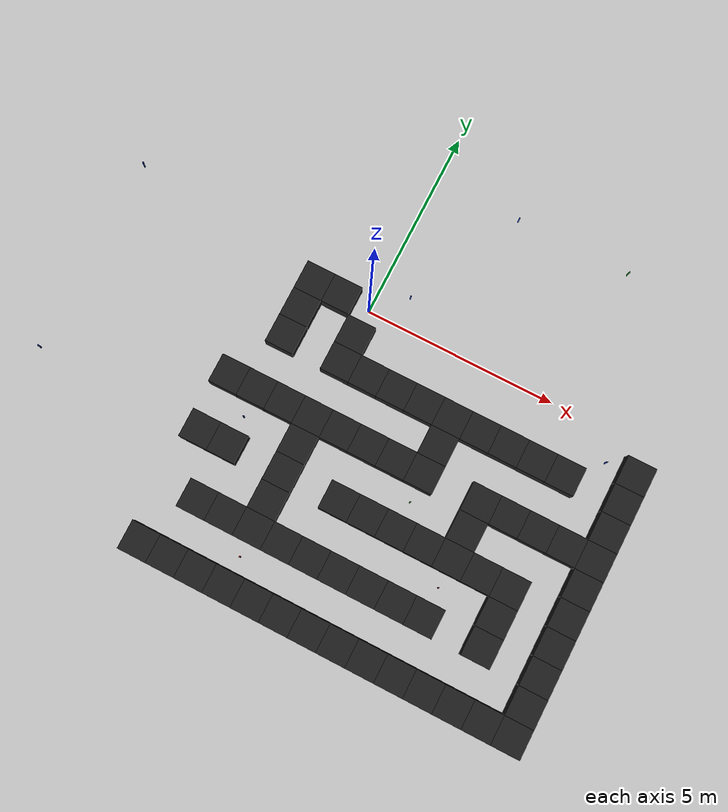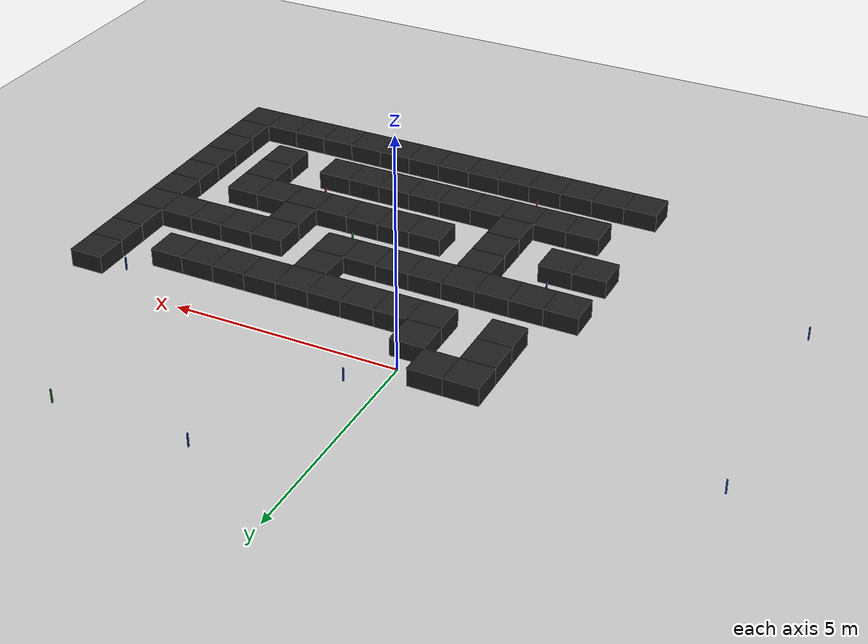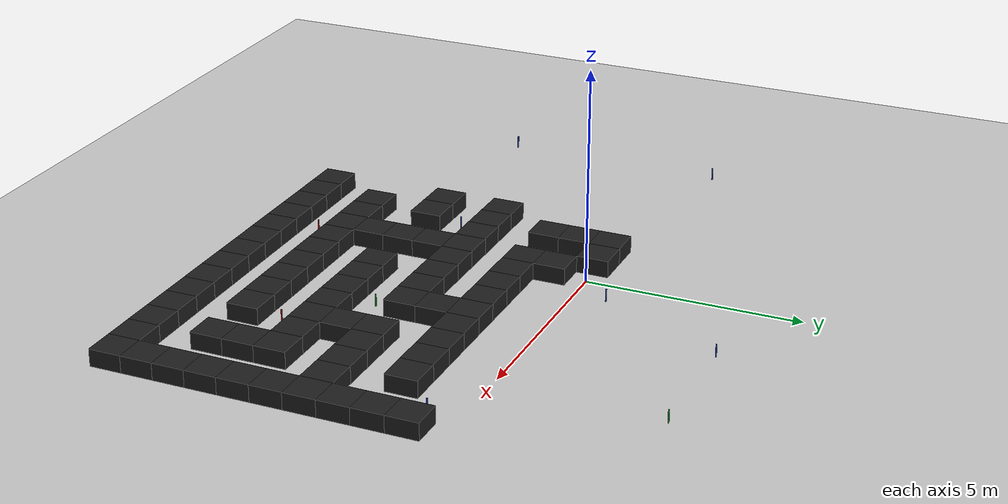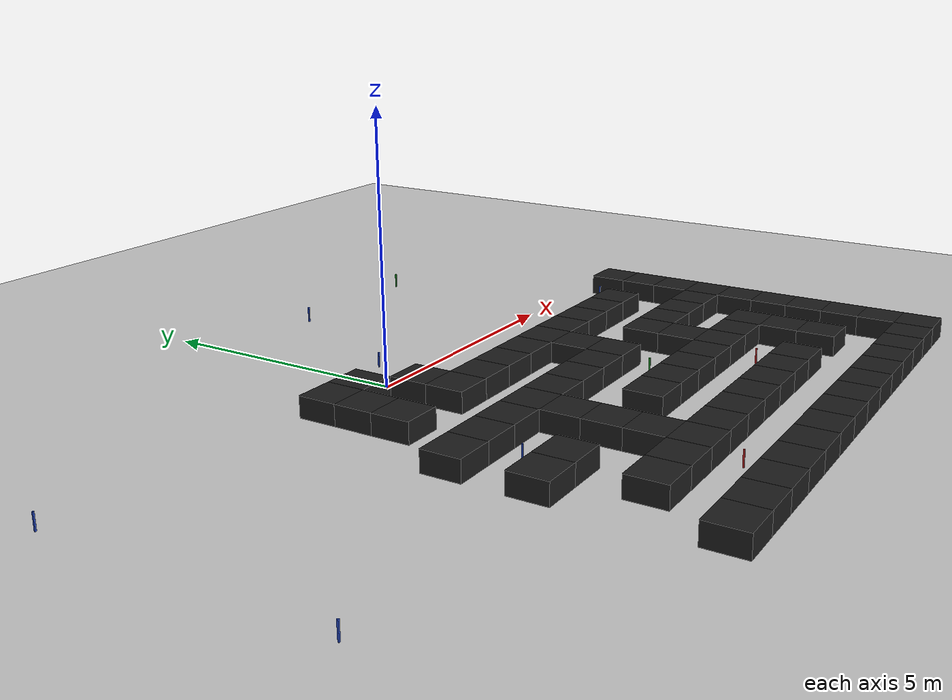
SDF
<sdf version="1.6">
 <world name="maze_gems">
  <include><uri>model://models/sun</uri></include>
  <include><uri>model://models/ground_plane</uri></include>
  <model name="walls">
   <static>true</static>
   <link name="wall_12">
    <pose>7.5 -0.75 0.2 0 0 0</pose>
    <visual name="wall_12_visual">
     <geometry><box><size>0.75 0.75 0.4</size></box></geometry>
     <material>
      <script><uri>file://media/materials/scripts/gazebo.material</uri><name>Gazebo/Black</name></script>
     </material>
    </visual>
    <collision name="wall_12_collision"><geometry><box><size>0.75 0.75 0.4</size></box></geometry></collision>
   </link>
   <link name="wall_13">
    <pose>7.5 -1.5 0.2 0 0 0</pose>
    <visual name="wall_13_visual">
     <geometry><box><size>0.75 0.75 0.4</size></box></geometry>
     <material>
      <script><uri>file://media/materials/scripts/gazebo.material</uri><name>Gazebo/Black</name></script>
     </material>
    </visual>
    <collision name="wall_13_collision"><geometry><box><size>0.75 0.75 0.4</size></box></geometry></collision>
   </link>
   <link name="wall_14">
    <pose>7.5 -2.25 0.2 0 0 0</pose>
    <visual name="wall_14_visual">
     <geometry><box><size>0.75 0.75 0.4</size></box></geometry>
     <material>
      <script><uri>file://media/materials/scripts/gazebo.material</uri><name>Gazebo/Black</name></script>
     </material>
    </visual>
    <collision name="wall_14_collision"><geometry><box><size>0.75 0.75 0.4</size></box></geometry></collision>
   </link>
   <link name="wall_15">
    <pose>7.5 -3.0 0.2 0 0 0</pose>
    <visual name="wall_15_visual">
     <geometry><box><size>0.75 0.75 0.4</size></box></geometry>
     <material>
      <script><uri>file://media/materials/scripts/gazebo.material</uri><name>Gazebo/Black</name></script>
     </material>
    </visual>
    <collision name="wall_15_collision"><geometry><box><size>0.75 0.75 0.4</size></box></geometry></collision>
   </link>
   <link name="wall_16">
    <pose>7.5 -3.75 0.2 0 0 0</pose>
    <visual name="wall_16_visual">
     <geometry><box><size>0.75 0.75 0.4</size></box></geometry>
     <material>
      <script><uri>file://media/materials/scripts/gazebo.material</uri><name>Gazebo/Black</name></script>
     </material>
    </visual>
    <collision name="wall_16_collision"><geometry><box><size>0.75 0.75 0.4</size></box></geometry></collision>
   </link>
   <link name="wall_17">
    <pose>7.5 -4.5 0.2 0 0 0</pose>
    <visual name="wall_17_visual">
     <geometry><box><size>0.75 0.75 0.4</size></box></geometry>
     <material>
      <script><uri>file://media/materials/scripts/gazebo.material</uri><name>Gazebo/Black</name></script>
     </material>
    </visual>
    <collision name="wall_17_collision"><geometry><box><size>0.75 0.75 0.4</size></box></geometry></collision>
   </link>
   <link name="wall_18">
    <pose>7.5 -5.25 0.2 0 0 0</pose>
    <visual name="wall_18_visual">
     <geometry><box><size>0.75 0.75 0.4</size></box></geometry>
     <material>
      <script><uri>file://media/materials/scripts/gazebo.material</uri><name>Gazebo/Black</name></script>
     </material>
    </visual>
    <collision name="wall_18_collision"><geometry><box><size>0.75 0.75 0.4</size></box></geometry></collision>
   </link>
   <link name="wall_19">
    <pose>7.5 -6.0 0.2 0 0 0</pose>
    <visual name="wall_19_visual">
     <geometry><box><size>0.75 0.75 0.4</size></box></geometry>
     <material>
      <script><uri>file://media/materials/scripts/gazebo.material</uri><name>Gazebo/Black</name></script>
     </material>
    </visual>
    <collision name="wall_19_collision"><geometry><box><size>0.75 0.75 0.4</size></box></geometry></collision>
   </link>
   <link name="wall_20">
    <pose>7.5 -6.75 0.2 0 0 0</pose>
    <visual name="wall_20_visual">
     <geometry><box><size>0.75 0.75 0.4</size></box></geometry>
     <material>
      <script><uri>file://media/materials/scripts/gazebo.material</uri><name>Gazebo/Black</name></script>
     </material>
    </visual>
    <collision name="wall_20_collision"><geometry><box><size>0.75 0.75 0.4</size></box></geometry></collision>
   </link>
   <link name="wall_21">
    <pose>7.5 -7.5 0.2 0 0 0</pose>
    <visual name="wall_21_visual">
     <geometry><box><size>0.75 0.75 0.4</size></box></geometry>
     <material>
      <script><uri>file://media/materials/scripts/gazebo.material</uri><name>Gazebo/Black</name></script>
     </material>
    </visual>
    <collision name="wall_21_collision"><geometry><box><size>0.75 0.75 0.4</size></box></geometry></collision>
   </link>
   <link name="wall_24">
    <pose>6.75 -3.0 0.2 0 0 0</pose>
    <visual name="wall_24_visual">
     <geometry><box><size>0.75 0.75 0.4</size></box></geometry>
     <material>
      <script><uri>file://media/materials/scripts/gazebo.material</uri><name>Gazebo/Black</name></script>
     </material>
    </visual>
    <collision name="wall_24_collision"><geometry><box><size>0.75 0.75 0.4</size></box></geometry></collision>
   </link>
   <link name="wall_25">
    <pose>6.75 -7.5 0.2 0 0 0</pose>
    <visual name="wall_25_visual">
     <geometry><box><size>0.75 0.75 0.4</size></box></geometry>
     <material>
      <script><uri>file://media/materials/scripts/gazebo.material</uri><name>Gazebo/Black</name></script>
     </material>
    </visual>
    <collision name="wall_25_collision"><geometry><box><size>0.75 0.75 0.4</size></box></geometry></collision>
   </link>
   <link name="wall_35">
    <pose>6.0 -1.5 0.2 0 0 0</pose>
    <visual name="wall_35_visual">
     <geometry><box><size>0.75 0.75 0.4</size></box></geometry>
     <material>
      <script><uri>file://media/materials/scripts/gazebo.material</uri><name>Gazebo/Black</name></script>
     </material>
    </visual>
    <collision name="wall_35_collision"><geometry><box><size>0.75 0.75 0.4</size></box></geometry></collision>
   </link>
   <link name="wall_36">
    <pose>6.0 -3.0 0.2 0 0 0</pose>
    <visual name="wall_36_visual">
     <geometry><box><size>0.75 0.75 0.4</size></box></geometry>
     <material>
      <script><uri>file://media/materials/scripts/gazebo.material</uri><name>Gazebo/Black</name></script>
     </material>
    </visual>
    <collision name="wall_36_collision"><geometry><box><size>0.75 0.75 0.4</size></box></geometry></collision>
   </link>
   <link name="wall_37">
    <pose>6.0 -4.5 0.2 0 0 0</pose>
    <visual name="wall_37_visual">
     <geometry><box><size>0.75 0.75 0.4</size></box></geometry>
     <material>
      <script><uri>file://media/materials/scripts/gazebo.material</uri><name>Gazebo/Black</name></script>
     </material>
    </visual>
    <collision name="wall_37_collision"><geometry><box><size>0.75 0.75 0.4</size></box></geometry></collision>
   </link>
   <link name="wall_38">
    <pose>6.0 -5.25 0.2 0 0 0</pose>
    <visual name="wall_38_visual">
     <geometry><box><size>0.75 0.75 0.4</size></box></geometry>
     <material>
      <script><uri>file://media/materials/scripts/gazebo.material</uri><name>Gazebo/Black</name></script>
     </material>
    </visual>
    <collision name="wall_38_collision"><geometry><box><size>0.75 0.75 0.4</size></box></geometry></collision>
   </link>
   <link name="wall_39">
    <pose>6.0 -6.0 0.2 0 0 0</pose>
    <visual name="wall_39_visual">
     <geometry><box><size>0.75 0.75 0.4</size></box></geometry>
     <material>
      <script><uri>file://media/materials/scripts/gazebo.material</uri><name>Gazebo/Black</name></script>
     </material>
    </visual>
    <collision name="wall_39_collision"><geometry><box><size>0.75 0.75 0.4</size></box></geometry></collision>
   </link>
   <link name="wall_40">
    <pose>6.0 -7.5 0.2 0 0 0</pose>
    <visual name="wall_40_visual">
     <geometry><box><size>0.75 0.75 0.4</size></box></geometry>
     <material>
      <script><uri>file://media/materials/scripts/gazebo.material</uri><name>Gazebo/Black</name></script>
     </material>
    </visual>
    <collision name="wall_40_collision"><geometry><box><size>0.75 0.75 0.4</size></box></geometry></collision>
   </link>
   <link name="wall_45">
    <pose>5.25 -1.5 0.2 0 0 0</pose>
    <visual name="wall_45_visual">
     <geometry><box><size>0.75 0.75 0.4</size></box></geometry>
     <material>
      <script><uri>file://media/materials/scripts/gazebo.material</uri><name>Gazebo/Black</name></script>
     </material>
    </visual>
    <collision name="wall_45_collision"><geometry><box><size>0.75 0.75 0.4</size></box></geometry></collision>
   </link>
   <link name="wall_46">
    <pose>5.25 -3.0 0.2 0 0 0</pose>
    <visual name="wall_46_visual">
     <geometry><box><size>0.75 0.75 0.4</size></box></geometry>
     <material>
      <script><uri>file://media/materials/scripts/gazebo.material</uri><name>Gazebo/Black</name></script>
     </material>
    </visual>
    <collision name="wall_46_collision"><geometry><box><size>0.75 0.75 0.4</size></box></geometry></collision>
   </link>
   <link name="wall_47">
    <pose>5.25 -4.5 0.2 0 0 0</pose>
    <visual name="wall_47_visual">
     <geometry><box><size>0.75 0.75 0.4</size></box></geometry>
     <material>
      <script><uri>file://media/materials/scripts/gazebo.material</uri><name>Gazebo/Black</name></script>
     </material>
    </visual>
    <collision name="wall_47_collision"><geometry><box><size>0.75 0.75 0.4</size></box></geometry></collision>
   </link>
   <link name="wall_48">
    <pose>5.25 -7.5 0.2 0 0 0</pose>
    <visual name="wall_48_visual">
     <geometry><box><size>0.75 0.75 0.4</size></box></geometry>
     <material>
      <script><uri>file://media/materials/scripts/gazebo.material</uri><name>Gazebo/Black</name></script>
     </material>
    </visual>
    <collision name="wall_48_collision"><geometry><box><size>0.75 0.75 0.4</size></box></geometry></collision>
   </link>
   <link name="wall_57">
    <pose>4.5 -1.5 0.2 0 0 0</pose>
    <visual name="wall_57_visual">
     <geometry><box><size>0.75 0.75 0.4</size></box></geometry>
     <material>
      <script><uri>file://media/materials/scripts/gazebo.material</uri><name>Gazebo/Black</name></script>
     </material>
    </visual>
    <collision name="wall_57_collision"><geometry><box><size>0.75 0.75 0.4</size></box></geometry></collision>
   </link>
   <link name="wall_58">
    <pose>4.5 -3.0 0.2 0 0 0</pose>
    <visual name="wall_58_visual">
     <geometry><box><size>0.75 0.75 0.4</size></box></geometry>
     <material>
      <script><uri>file://media/materials/scripts/gazebo.material</uri><name>Gazebo/Black</name></script>
     </material>
    </visual>
    <collision name="wall_58_collision"><geometry><box><size>0.75 0.75 0.4</size></box></geometry></collision>
   </link>
   <link name="wall_59">
    <pose>4.5 -3.75 0.2 0 0 0</pose>
    <visual name="wall_59_visual">
     <geometry><box><size>0.75 0.75 0.4</size></box></geometry>
     <material>
      <script><uri>file://media/materials/scripts/gazebo.material</uri><name>Gazebo/Black</name></script>
     </material>
    </visual>
    <collision name="wall_59_collision"><geometry><box><size>0.75 0.75 0.4</size></box></geometry></collision>
   </link>
   <link name="wall_60">
    <pose>4.5 -4.5 0.2 0 0 0</pose>
    <visual name="wall_60_visual">
     <geometry><box><size>0.75 0.75 0.4</size></box></geometry>
     <material>
      <script><uri>file://media/materials/scripts/gazebo.material</uri><name>Gazebo/Black</name></script>
     </material>
    </visual>
    <collision name="wall_60_collision"><geometry><box><size>0.75 0.75 0.4</size></box></geometry></collision>
   </link>
   <link name="wall_61">
    <pose>4.5 -6.0 0.2 0 0 0</pose>
    <visual name="wall_61_visual">
     <geometry><box><size>0.75 0.75 0.4</size></box></geometry>
     <material>
      <script><uri>file://media/materials/scripts/gazebo.material</uri><name>Gazebo/Black</name></script>
     </material>
    </visual>
    <collision name="wall_61_collision"><geometry><box><size>0.75 0.75 0.4</size></box></geometry></collision>
   </link>
   <link name="wall_62">
    <pose>4.5 -7.5 0.2 0 0 0</pose>
    <visual name="wall_62_visual">
     <geometry><box><size>0.75 0.75 0.4</size></box></geometry>
     <material>
      <script><uri>file://media/materials/scripts/gazebo.material</uri><name>Gazebo/Black</name></script>
     </material>
    </visual>
    <collision name="wall_62_collision"><geometry><box><size>0.75 0.75 0.4</size></box></geometry></collision>
   </link>
   <link name="wall_67">
    <pose>3.75 -1.5 0.2 0 0 0</pose>
    <visual name="wall_67_visual">
     <geometry><box><size>0.75 0.75 0.4</size></box></geometry>
     <material>
      <script><uri>file://media/materials/scripts/gazebo.material</uri><name>Gazebo/Black</name></script>
     </material>
    </visual>
    <collision name="wall_67_collision"><geometry><box><size>0.75 0.75 0.4</size></box></geometry></collision>
   </link>
   <link name="wall_68">
    <pose>3.75 -4.5 0.2 0 0 0</pose>
    <visual name="wall_68_visual">
     <geometry><box><size>0.75 0.75 0.4</size></box></geometry>
     <material>
      <script><uri>file://media/materials/scripts/gazebo.material</uri><name>Gazebo/Black</name></script>
     </material>
    </visual>
    <collision name="wall_68_collision"><geometry><box><size>0.75 0.75 0.4</size></box></geometry></collision>
   </link>
   <link name="wall_69">
    <pose>3.75 -6.0 0.2 0 0 0</pose>
    <visual name="wall_69_visual">
     <geometry><box><size>0.75 0.75 0.4</size></box></geometry>
     <material>
      <script><uri>file://media/materials/scripts/gazebo.material</uri><name>Gazebo/Black</name></script>
     </material>
    </visual>
    <collision name="wall_69_collision"><geometry><box><size>0.75 0.75 0.4</size></box></geometry></collision>
   </link>
   <link name="wall_70">
    <pose>3.75 -7.5 0.2 0 0 0</pose>
    <visual name="wall_70_visual">
     <geometry><box><size>0.75 0.75 0.4</size></box></geometry>
     <material>
      <script><uri>file://media/materials/scripts/gazebo.material</uri><name>Gazebo/Black</name></script>
     </material>
    </visual>
    <collision name="wall_70_collision"><geometry><box><size>0.75 0.75 0.4</size></box></geometry></collision>
   </link>
   <link name="wall_79">
    <pose>3.0 -1.5 0.2 0 0 0</pose>
    <visual name="wall_79_visual">
     <geometry><box><size>0.75 0.75 0.4</size></box></geometry>
     <material>
      <script><uri>file://media/materials/scripts/gazebo.material</uri><name>Gazebo/Black</name></script>
     </material>
    </visual>
    <collision name="wall_79_collision"><geometry><box><size>0.75 0.75 0.4</size></box></geometry></collision>
   </link>
   <link name="wall_80">
    <pose>3.0 -2.25 0.2 0 0 0</pose>
    <visual name="wall_80_visual">
     <geometry><box><size>0.75 0.75 0.4</size></box></geometry>
     <material>
      <script><uri>file://media/materials/scripts/gazebo.material</uri><name>Gazebo/Black</name></script>
     </material>
    </visual>
    <collision name="wall_80_collision"><geometry><box><size>0.75 0.75 0.4</size></box></geometry></collision>
   </link>
   <link name="wall_81">
    <pose>3.0 -3.0 0.2 0 0 0</pose>
    <visual name="wall_81_visual">
     <geometry><box><size>0.75 0.75 0.4</size></box></geometry>
     <material>
      <script><uri>file://media/materials/scripts/gazebo.material</uri><name>Gazebo/Black</name></script>
     </material>
    </visual>
    <collision name="wall_81_collision"><geometry><box><size>0.75 0.75 0.4</size></box></geometry></collision>
   </link>
   <link name="wall_82">
    <pose>3.0 -4.5 0.2 0 0 0</pose>
    <visual name="wall_82_visual">
     <geometry><box><size>0.75 0.75 0.4</size></box></geometry>
     <material>
      <script><uri>file://media/materials/scripts/gazebo.material</uri><name>Gazebo/Black</name></script>
     </material>
    </visual>
    <collision name="wall_82_collision"><geometry><box><size>0.75 0.75 0.4</size></box></geometry></collision>
   </link>
   <link name="wall_83">
    <pose>3.0 -6.0 0.2 0 0 0</pose>
    <visual name="wall_83_visual">
     <geometry><box><size>0.75 0.75 0.4</size></box></geometry>
     <material>
      <script><uri>file://media/materials/scripts/gazebo.material</uri><name>Gazebo/Black</name></script>
     </material>
    </visual>
    <collision name="wall_83_collision"><geometry><box><size>0.75 0.75 0.4</size></box></geometry></collision>
   </link>
   <link name="wall_84">
    <pose>3.0 -7.5 0.2 0 0 0</pose>
    <visual name="wall_84_visual">
     <geometry><box><size>0.75 0.75 0.4</size></box></geometry>
     <material>
      <script><uri>file://media/materials/scripts/gazebo.material</uri><name>Gazebo/Black</name></script>
     </material>
    </visual>
    <collision name="wall_84_collision"><geometry><box><size>0.75 0.75 0.4</size></box></geometry></collision>
   </link>
   <link name="wall_89">
    <pose>2.25 -1.5 0.2 0 0 0</pose>
    <visual name="wall_89_visual">
     <geometry><box><size>0.75 0.75 0.4</size></box></geometry>
     <material>
      <script><uri>file://media/materials/scripts/gazebo.material</uri><name>Gazebo/Black</name></script>
     </material>
    </visual>
    <collision name="wall_89_collision"><geometry><box><size>0.75 0.75 0.4</size></box></geometry></collision>
   </link>
   <link name="wall_90">
    <pose>2.25 -3.0 0.2 0 0 0</pose>
    <visual name="wall_90_visual">
     <geometry><box><size>0.75 0.75 0.4</size></box></geometry>
     <material>
      <script><uri>file://media/materials/scripts/gazebo.material</uri><name>Gazebo/Black</name></script>
     </material>
    </visual>
    <collision name="wall_90_collision"><geometry><box><size>0.75 0.75 0.4</size></box></geometry></collision>
   </link>
   <link name="wall_91">
    <pose>2.25 -4.5 0.2 0 0 0</pose>
    <visual name="wall_91_visual">
     <geometry><box><size>0.75 0.75 0.4</size></box></geometry>
     <material>
      <script><uri>file://media/materials/scripts/gazebo.material</uri><name>Gazebo/Black</name></script>
     </material>
    </visual>
    <collision name="wall_91_collision"><geometry><box><size>0.75 0.75 0.4</size></box></geometry></collision>
   </link>
   <link name="wall_92">
    <pose>2.25 -6.0 0.2 0 0 0</pose>
    <visual name="wall_92_visual">
     <geometry><box><size>0.75 0.75 0.4</size></box></geometry>
     <material>
      <script><uri>file://media/materials/scripts/gazebo.material</uri><name>Gazebo/Black</name></script>
     </material>
    </visual>
    <collision name="wall_92_collision"><geometry><box><size>0.75 0.75 0.4</size></box></geometry></collision>
   </link>
   <link name="wall_93">
    <pose>2.25 -7.5 0.2 0 0 0</pose>
    <visual name="wall_93_visual">
     <geometry><box><size>0.75 0.75 0.4</size></box></geometry>
     <material>
      <script><uri>file://media/materials/scripts/gazebo.material</uri><name>Gazebo/Black</name></script>
     </material>
    </visual>
    <collision name="wall_93_collision"><geometry><box><size>0.75 0.75 0.4</size></box></geometry></collision>
   </link>
   <link name="wall_102">
    <pose>1.5 -1.5 0.2 0 0 0</pose>
    <visual name="wall_102_visual">
     <geometry><box><size>0.75 0.75 0.4</size></box></geometry>
     <material>
      <script><uri>file://media/materials/scripts/gazebo.material</uri><name>Gazebo/Black</name></script>
     </material>
    </visual>
    <collision name="wall_102_collision"><geometry><box><size>0.75 0.75 0.4</size></box></geometry></collision>
   </link>
   <link name="wall_103">
    <pose>1.5 -3.0 0.2 0 0 0</pose>
    <visual name="wall_103_visual">
     <geometry><box><size>0.75 0.75 0.4</size></box></geometry>
     <material>
      <script><uri>file://media/materials/scripts/gazebo.material</uri><name>Gazebo/Black</name></script>
     </material>
    </visual>
    <collision name="wall_103_collision"><geometry><box><size>0.75 0.75 0.4</size></box></geometry></collision>
   </link>
   <link name="wall_104">
    <pose>1.5 -4.5 0.2 0 0 0</pose>
    <visual name="wall_104_visual">
     <geometry><box><size>0.75 0.75 0.4</size></box></geometry>
     <material>
      <script><uri>file://media/materials/scripts/gazebo.material</uri><name>Gazebo/Black</name></script>
     </material>
    </visual>
    <collision name="wall_104_collision"><geometry><box><size>0.75 0.75 0.4</size></box></geometry></collision>
   </link>
   <link name="wall_105">
    <pose>1.5 -6.0 0.2 0 0 0</pose>
    <visual name="wall_105_visual">
     <geometry><box><size>0.75 0.75 0.4</size></box></geometry>
     <material>
      <script><uri>file://media/materials/scripts/gazebo.material</uri><name>Gazebo/Black</name></script>
     </material>
    </visual>
    <collision name="wall_105_collision"><geometry><box><size>0.75 0.75 0.4</size></box></geometry></collision>
   </link>
   <link name="wall_106">
    <pose>1.5 -7.5 0.2 0 0 0</pose>
    <visual name="wall_106_visual">
     <geometry><box><size>0.75 0.75 0.4</size></box></geometry>
     <material>
      <script><uri>file://media/materials/scripts/gazebo.material</uri><name>Gazebo/Black</name></script>
     </material>
    </visual>
    <collision name="wall_106_collision"><geometry><box><size>0.75 0.75 0.4</size></box></geometry></collision>
   </link>
   <link name="wall_111">
    <pose>0.75 -1.5 0.2 0 0 0</pose>
    <visual name="wall_111_visual">
     <geometry><box><size>0.75 0.75 0.4</size></box></geometry>
     <material>
      <script><uri>file://media/materials/scripts/gazebo.material</uri><name>Gazebo/Black</name></script>
     </material>
    </visual>
    <collision name="wall_111_collision"><geometry><box><size>0.75 0.75 0.4</size></box></geometry></collision>
   </link>
   <link name="wall_112">
    <pose>0.75 -3.0 0.2 0 0 0</pose>
    <visual name="wall_112_visual">
     <geometry><box><size>0.75 0.75 0.4</size></box></geometry>
     <material>
      <script><uri>file://media/materials/scripts/gazebo.material</uri><name>Gazebo/Black</name></script>
     </material>
    </visual>
    <collision name="wall_112_collision"><geometry><box><size>0.75 0.75 0.4</size></box></geometry></collision>
   </link>
   <link name="wall_113">
    <pose>0.75 -6.0 0.2 0 0 0</pose>
    <visual name="wall_113_visual">
     <geometry><box><size>0.75 0.75 0.4</size></box></geometry>
     <material>
      <script><uri>file://media/materials/scripts/gazebo.material</uri><name>Gazebo/Black</name></script>
     </material>
    </visual>
    <collision name="wall_113_collision"><geometry><box><size>0.75 0.75 0.4</size></box></geometry></collision>
   </link>
   <link name="wall_114">
    <pose>0.75 -7.5 0.2 0 0 0</pose>
    <visual name="wall_114_visual">
     <geometry><box><size>0.75 0.75 0.4</size></box></geometry>
     <material>
      <script><uri>file://media/materials/scripts/gazebo.material</uri><name>Gazebo/Black</name></script>
     </material>
    </visual>
    <collision name="wall_114_collision"><geometry><box><size>0.75 0.75 0.4</size></box></geometry></collision>
   </link>
   <link name="wall_122">
    <pose>0.0 -0.75 0.2 0 0 0</pose>
    <visual name="wall_122_visual">
     <geometry><box><size>0.75 0.75 0.4</size></box></geometry>
     <material>
      <script><uri>file://media/materials/scripts/gazebo.material</uri><name>Gazebo/Black</name></script>
     </material>
    </visual>
    <collision name="wall_122_collision"><geometry><box><size>0.75 0.75 0.4</size></box></geometry></collision>
   </link>
   <link name="wall_123">
    <pose>0.0 -1.5 0.2 0 0 0</pose>
    <visual name="wall_123_visual">
     <geometry><box><size>0.75 0.75 0.4</size></box></geometry>
     <material>
      <script><uri>file://media/materials/scripts/gazebo.material</uri><name>Gazebo/Black</name></script>
     </material>
    </visual>
    <collision name="wall_123_collision"><geometry><box><size>0.75 0.75 0.4</size></box></geometry></collision>
   </link>
   <link name="wall_124">
    <pose>0.0 -3.0 0.2 0 0 0</pose>
    <visual name="wall_124_visual">
     <geometry><box><size>0.75 0.75 0.4</size></box></geometry>
     <material>
      <script><uri>file://media/materials/scripts/gazebo.material</uri><name>Gazebo/Black</name></script>
     </material>
    </visual>
    <collision name="wall_124_collision"><geometry><box><size>0.75 0.75 0.4</size></box></geometry></collision>
   </link>
   <link name="wall_125">
    <pose>0.0 -3.75 0.2 0 0 0</pose>
    <visual name="wall_125_visual">
     <geometry><box><size>0.75 0.75 0.4</size></box></geometry>
     <material>
      <script><uri>file://media/materials/scripts/gazebo.material</uri><name>Gazebo/Black</name></script>
     </material>
    </visual>
    <collision name="wall_125_collision"><geometry><box><size>0.75 0.75 0.4</size></box></geometry></collision>
   </link>
   <link name="wall_126">
    <pose>0.0 -4.5 0.2 0 0 0</pose>
    <visual name="wall_126_visual">
     <geometry><box><size>0.75 0.75 0.4</size></box></geometry>
     <material>
      <script><uri>file://media/materials/scripts/gazebo.material</uri><name>Gazebo/Black</name></script>
     </material>
    </visual>
    <collision name="wall_126_collision"><geometry><box><size>0.75 0.75 0.4</size></box></geometry></collision>
   </link>
   <link name="wall_127">
    <pose>0.0 -5.25 0.2 0 0 0</pose>
    <visual name="wall_127_visual">
     <geometry><box><size>0.75 0.75 0.4</size></box></geometry>
     <material>
      <script><uri>file://media/materials/scripts/gazebo.material</uri><name>Gazebo/Black</name></script>
     </material>
    </visual>
    <collision name="wall_127_collision"><geometry><box><size>0.75 0.75 0.4</size></box></geometry></collision>
   </link>
   <link name="wall_128">
    <pose>0.0 -6.0 0.2 0 0 0</pose>
    <visual name="wall_128_visual">
     <geometry><box><size>0.75 0.75 0.4</size></box></geometry>
     <material>
      <script><uri>file://media/materials/scripts/gazebo.material</uri><name>Gazebo/Black</name></script>
     </material>
    </visual>
    <collision name="wall_128_collision"><geometry><box><size>0.75 0.75 0.4</size></box></geometry></collision>
   </link>
   <link name="wall_129">
    <pose>0.0 -7.5 0.2 0 0 0</pose>
    <visual name="wall_129_visual">
     <geometry><box><size>0.75 0.75 0.4</size></box></geometry>
     <material>
      <script><uri>file://media/materials/scripts/gazebo.material</uri><name>Gazebo/Black</name></script>
     </material>
    </visual>
    <collision name="wall_129_collision"><geometry><box><size>0.75 0.75 0.4</size></box></geometry></collision>
   </link>
   <link name="wall_133">
    <pose>-0.75 0.0 0.2 0 0 0</pose>
    <visual name="wall_133_visual">
     <geometry><box><size>0.75 0.75 0.4</size></box></geometry>
     <material>
      <script><uri>file://media/materials/scripts/gazebo.material</uri><name>Gazebo/Black</name></script>
     </material>
    </visual>
    <collision name="wall_133_collision"><geometry><box><size>0.75 0.75 0.4</size></box></geometry></collision>
   </link>
   <link name="wall_134">
    <pose>-0.75 -3.0 0.2 0 0 0</pose>
    <visual name="wall_134_visual">
     <geometry><box><size>0.75 0.75 0.4</size></box></geometry>
     <material>
      <script><uri>file://media/materials/scripts/gazebo.material</uri><name>Gazebo/Black</name></script>
     </material>
    </visual>
    <collision name="wall_134_collision"><geometry><box><size>0.75 0.75 0.4</size></box></geometry></collision>
   </link>
   <link name="wall_135">
    <pose>-0.75 -6.0 0.2 0 0 0</pose>
    <visual name="wall_135_visual">
     <geometry><box><size>0.75 0.75 0.4</size></box></geometry>
     <material>
      <script><uri>file://media/materials/scripts/gazebo.material</uri><name>Gazebo/Black</name></script>
     </material>
    </visual>
    <collision name="wall_135_collision"><geometry><box><size>0.75 0.75 0.4</size></box></geometry></collision>
   </link>
   <link name="wall_136">
    <pose>-0.75 -7.5 0.2 0 0 0</pose>
    <visual name="wall_136_visual">
     <geometry><box><size>0.75 0.75 0.4</size></box></geometry>
     <material>
      <script><uri>file://media/materials/scripts/gazebo.material</uri><name>Gazebo/Black</name></script>
     </material>
    </visual>
    <collision name="wall_136_collision"><geometry><box><size>0.75 0.75 0.4</size></box></geometry></collision>
   </link>
   <link name="wall_145">
    <pose>-1.5 0.0 0.2 0 0 0</pose>
    <visual name="wall_145_visual">
     <geometry><box><size>0.75 0.75 0.4</size></box></geometry>
     <material>
      <script><uri>file://media/materials/scripts/gazebo.material</uri><name>Gazebo/Black</name></script>
     </material>
    </visual>
    <collision name="wall_145_collision"><geometry><box><size>0.75 0.75 0.4</size></box></geometry></collision>
   </link>
   <link name="wall_146">
    <pose>-1.5 -0.75 0.2 0 0 0</pose>
    <visual name="wall_146_visual">
     <geometry><box><size>0.75 0.75 0.4</size></box></geometry>
     <material>
      <script><uri>file://media/materials/scripts/gazebo.material</uri><name>Gazebo/Black</name></script>
     </material>
    </visual>
    <collision name="wall_146_collision"><geometry><box><size>0.75 0.75 0.4</size></box></geometry></collision>
   </link>
   <link name="wall_147">
    <pose>-1.5 -1.5 0.2 0 0 0</pose>
    <visual name="wall_147_visual">
     <geometry><box><size>0.75 0.75 0.4</size></box></geometry>
     <material>
      <script><uri>file://media/materials/scripts/gazebo.material</uri><name>Gazebo/Black</name></script>
     </material>
    </visual>
    <collision name="wall_147_collision"><geometry><box><size>0.75 0.75 0.4</size></box></geometry></collision>
   </link>
   <link name="wall_148">
    <pose>-1.5 -3.0 0.2 0 0 0</pose>
    <visual name="wall_148_visual">
     <geometry><box><size>0.75 0.75 0.4</size></box></geometry>
     <material>
      <script><uri>file://media/materials/scripts/gazebo.material</uri><name>Gazebo/Black</name></script>
     </material>
    </visual>
    <collision name="wall_148_collision"><geometry><box><size>0.75 0.75 0.4</size></box></geometry></collision>
   </link>
   <link name="wall_149">
    <pose>-1.5 -4.5 0.2 0 0 0</pose>
    <visual name="wall_149_visual">
     <geometry><box><size>0.75 0.75 0.4</size></box></geometry>
     <material>
      <script><uri>file://media/materials/scripts/gazebo.material</uri><name>Gazebo/Black</name></script>
     </material>
    </visual>
    <collision name="wall_149_collision"><geometry><box><size>0.75 0.75 0.4</size></box></geometry></collision>
   </link>
   <link name="wall_150">
    <pose>-1.5 -6.0 0.2 0 0 0</pose>
    <visual name="wall_150_visual">
     <geometry><box><size>0.75 0.75 0.4</size></box></geometry>
     <material>
      <script><uri>file://media/materials/scripts/gazebo.material</uri><name>Gazebo/Black</name></script>
     </material>
    </visual>
    <collision name="wall_150_collision"><geometry><box><size>0.75 0.75 0.4</size></box></geometry></collision>
   </link>
   <link name="wall_151">
    <pose>-1.5 -7.5 0.2 0 0 0</pose>
    <visual name="wall_151_visual">
     <geometry><box><size>0.75 0.75 0.4</size></box></geometry>
     <material>
      <script><uri>file://media/materials/scripts/gazebo.material</uri><name>Gazebo/Black</name></script>
     </material>
    </visual>
    <collision name="wall_151_collision"><geometry><box><size>0.75 0.75 0.4</size></box></geometry></collision>
   </link>
   <link name="wall_154">
    <pose>-2.25 -3.0 0.2 0 0 0</pose>
    <visual name="wall_154_visual">
     <geometry><box><size>0.75 0.75 0.4</size></box></geometry>
     <material>
      <script><uri>file://media/materials/scripts/gazebo.material</uri><name>Gazebo/Black</name></script>
     </material>
    </visual>
    <collision name="wall_154_collision"><geometry><box><size>0.75 0.75 0.4</size></box></geometry></collision>
   </link>
   <link name="wall_155">
    <pose>-2.25 -4.5 0.2 0 0 0</pose>
    <visual name="wall_155_visual">
     <geometry><box><size>0.75 0.75 0.4</size></box></geometry>
     <material>
      <script><uri>file://media/materials/scripts/gazebo.material</uri><name>Gazebo/Black</name></script>
     </material>
    </visual>
    <collision name="wall_155_collision"><geometry><box><size>0.75 0.75 0.4</size></box></geometry></collision>
   </link>
   <link name="wall_156">
    <pose>-2.25 -7.5 0.2 0 0 0</pose>
    <visual name="wall_156_visual">
     <geometry><box><size>0.75 0.75 0.4</size></box></geometry>
     <material>
      <script><uri>file://media/materials/scripts/gazebo.material</uri><name>Gazebo/Black</name></script>
     </material>
    </visual>
    <collision name="wall_156_collision"><geometry><box><size>0.75 0.75 0.4</size></box></geometry></collision>
   </link>
  </model>
  <model name="gems">
   <link name="Green_gem_1">
    <pose>5.2625625 3.7625625 0.15000000000000002 0 0 0</pose>
    <visual name="Green_gem_1_visual">
     <geometry><box><size>0.025125 0.025125 0.30000000000000004</size></box></geometry>
     <material>
      <script><uri>file://media/materials/scripts/gazebo.material</uri><name>Gazebo/Green</name></script>
     </material>
    </visual>
    <collision name="Green_gem_1_collision">
     <geometry><box><size>0.025125 0.025125 0.30000000000000004</size></box></geometry>
     <surface><friction><ode><mu>0.5</mu><mu2>0.5</mu2></ode></friction></surface>
    </collision>
    <inertial name="Green_gem_1_inertial">
     <mass>0.6</mass>
     <inertia>
      <ixx>0.004531563281250001</ixx>
      <ixy>0</ixy>
      <ixz>0</ixz>
      <iyy>0.004531563281250001</iyy>
      <iyz>0</iyz>
      <izz>6.312656250000001e-05</izz>
     </inertia>
    </inertial>
   </link>
   <link name="Blue_gem_2">
    <pose>2.2625625 3.7625625 0.15000000000000002 0 0 0</pose>
    <visual name="Blue_gem_2_visual">
     <geometry><box><size>0.025125 0.025125 0.30000000000000004</size></box></geometry>
     <material>
      <script><uri>file://media/materials/scripts/gazebo.material</uri><name>Gazebo/Blue</name></script>
     </material>
    </visual>
    <collision name="Blue_gem_2_collision">
     <geometry><box><size>0.025125 0.025125 0.30000000000000004</size></box></geometry>
     <surface><friction><ode><mu>0.5</mu><mu2>0.5</mu2></ode></friction></surface>
    </collision>
    <inertial name="Blue_gem_2_inertial">
     <mass>0.6</mass>
     <inertia>
      <ixx>0.004531563281250001</ixx>
      <ixy>0</ixy>
      <ixz>0</ixz>
      <iyy>0.004531563281250001</iyy>
      <iyz>0</iyz>
      <izz>6.312656250000001e-05</izz>
     </inertia>
    </inertial>
   </link>
   <link name="Blue_gem_3">
    <pose>0.7625625 0.7625625 0.15000000000000002 0 0 0</pose>
    <visual name="Blue_gem_3_visual">
     <geometry><box><size>0.025125 0.025125 0.30000000000000004</size></box></geometry>
     <material>
      <script><uri>file://media/materials/scripts/gazebo.material</uri><name>Gazebo/Blue</name></script>
     </material>
    </visual>
    <collision name="Blue_gem_3_collision">
     <geometry><box><size>0.025125 0.025125 0.30000000000000004</size></box></geometry>
     <surface><friction><ode><mu>0.5</mu><mu2>0.5</mu2></ode></friction></surface>
    </collision>
    <inertial name="Blue_gem_3_inertial">
     <mass>0.6</mass>
     <inertia>
      <ixx>0.004531563281250001</ixx>
      <ixy>0</ixy>
      <ixz>0</ixz>
      <iyy>0.004531563281250001</iyy>
      <iyz>0</iyz>
      <izz>6.312656250000001e-05</izz>
     </inertia>
    </inertial>
   </link>
   <link name="Blue_gem_4">
    <pose>6.7625625 -0.7374375 0.15000000000000002 0 0 0</pose>
    <visual name="Blue_gem_4_visual">
     <geometry><box><size>0.025125 0.025125 0.30000000000000004</size></box></geometry>
     <material>
      <script><uri>file://media/materials/scripts/gazebo.material</uri><name>Gazebo/Blue</name></script>
     </material>
    </visual>
    <collision name="Blue_gem_4_collision">
     <geometry><box><size>0.025125 0.025125 0.30000000000000004</size></box></geometry>
     <surface><friction><ode><mu>0.5</mu><mu2>0.5</mu2></ode></friction></surface>
    </collision>
    <inertial name="Blue_gem_4_inertial">
     <mass>0.6</mass>
     <inertia>
      <ixx>0.004531563281250001</ixx>
      <ixy>0</ixy>
      <ixz>0</ixz>
      <iyy>0.004531563281250001</iyy>
      <iyz>0</iyz>
      <izz>6.312656250000001e-05</izz>
     </inertia>
    </inertial>
   </link>
   <link name="Green_gem_5">
    <pose>3.0125625 -3.7374375 0.15000000000000002 0 0 0</pose>
    <visual name="Green_gem_5_visual">
     <geometry><box><size>0.025125 0.025125 0.30000000000000004</size></box></geometry>
     <material>
      <script><uri>file://media/materials/scripts/gazebo.material</uri><name>Gazebo/Green</name></script>
     </material>
    </visual>
    <collision name="Green_gem_5_collision">
     <geometry><box><size>0.025125 0.025125 0.30000000000000004</size></box></geometry>
     <surface><friction><ode><mu>0.5</mu><mu2>0.5</mu2></ode></friction></surface>
    </collision>
    <inertial name="Green_gem_5_inertial">
     <mass>0.6</mass>
     <inertia>
      <ixx>0.004531563281250001</ixx>
      <ixy>0</ixy>
      <ixz>0</ixz>
      <iyy>0.004531563281250001</iyy>
      <iyz>0</iyz>
      <izz>6.312656250000001e-05</izz>
     </inertia>
    </inertial>
   </link>
   <link name="Red_gem_6">
    <pose>4.5125625 -5.2374375 0.15000000000000002 0 0 0</pose>
    <visual name="Red_gem_6_visual">
     <geometry><box><size>0.025125 0.025125 0.30000000000000004</size></box></geometry>
     <material>
      <script><uri>file://media/materials/scripts/gazebo.material</uri><name>Gazebo/Red</name></script>
     </material>
    </visual>
    <collision name="Red_gem_6_collision">
     <geometry><box><size>0.025125 0.025125 0.30000000000000004</size></box></geometry>
     <surface><friction><ode><mu>0.5</mu><mu2>0.5</mu2></ode></friction></surface>
    </collision>
    <inertial name="Red_gem_6_inertial">
     <mass>0.6</mass>
     <inertia>
      <ixx>0.004531563281250001</ixx>
      <ixy>0</ixy>
      <ixz>0</ixz>
      <iyy>0.004531563281250001</iyy>
      <iyz>0</iyz>
      <izz>6.312656250000001e-05</izz>
     </inertia>
    </inertial>
   </link>
   <link name="Red_gem_7">
    <pose>0.0125625 -6.7374375 0.15000000000000002 0 0 0</pose>
    <visual name="Red_gem_7_visual">
     <geometry><box><size>0.025125 0.025125 0.30000000000000004</size></box></geometry>
     <material>
      <script><uri>file://media/materials/scripts/gazebo.material</uri><name>Gazebo/Red</name></script>
     </material>
    </visual>
    <collision name="Red_gem_7_collision">
     <geometry><box><size>0.025125 0.025125 0.30000000000000004</size></box></geometry>
     <surface><friction><ode><mu>0.5</mu><mu2>0.5</mu2></ode></friction></surface>
    </collision>
    <inertial name="Red_gem_7_inertial">
     <mass>0.6</mass>
     <inertia>
      <ixx>0.004531563281250001</ixx>
      <ixy>0</ixy>
      <ixz>0</ixz>
      <iyy>0.004531563281250001</iyy>
      <iyz>0</iyz>
      <izz>6.312656250000001e-05</izz>
     </inertia>
    </inertial>
   </link>
   <link name="Blue_gem_8">
    <pose>-1.4874375 -3.7374375 0.15000000000000002 0 0 0</pose>
    <visual name="Blue_gem_8_visual">
     <geometry><box><size>0.025125 0.025125 0.30000000000000004</size></box></geometry>
     <material>
      <script><uri>file://media/materials/scripts/gazebo.material</uri><name>Gazebo/Blue</name></script>
     </material>
    </visual>
    <collision name="Blue_gem_8_collision">
     <geometry><box><size>0.025125 0.025125 0.30000000000000004</size></box></geometry>
     <surface><friction><ode><mu>0.5</mu><mu2>0.5</mu2></ode></friction></surface>
    </collision>
    <inertial name="Blue_gem_8_inertial">
     <mass>0.6</mass>
     <inertia>
      <ixx>0.004531563281250001</ixx>
      <ixy>0</ixy>
      <ixz>0</ixz>
      <iyy>0.004531563281250001</iyy>
      <iyz>0</iyz>
      <izz>6.312656250000001e-05</izz>
     </inertia>
    </inertial>
   </link>
   <link name="Blue_gem_9">
    <pose>-6.7374375 0.7625625 0.15000000000000002 0 0 0</pose>
    <visual name="Blue_gem_9_visual">
     <geometry><box><size>0.025125 0.025125 0.30000000000000004</size></box></geometry>
     <material>
      <script><uri>file://media/materials/scripts/gazebo.material</uri><name>Gazebo/Blue</name></script>
     </material>
    </visual>
    <collision name="Blue_gem_9_collision">
     <geometry><box><size>0.025125 0.025125 0.30000000000000004</size></box></geometry>
     <surface><friction><ode><mu>0.5</mu><mu2>0.5</mu2></ode></friction></surface>
    </collision>
    <inertial name="Blue_gem_9_inertial">
     <mass>0.6</mass>
     <inertia>
      <ixx>0.004531563281250001</ixx>
      <ixy>0</ixy>
      <ixz>0</ixz>
      <iyy>0.004531563281250001</iyy>
      <iyz>0</iyz>
      <izz>6.312656250000001e-05</izz>
     </inertia>
    </inertial>
   </link>
   <link name="Blue_gem_10">
    <pose>-6.7374375 -4.4874375 0.15000000000000002 0 0 0</pose>
    <visual name="Blue_gem_10_visual">
     <geometry><box><size>0.025125 0.025125 0.30000000000000004</size></box></geometry>
     <material>
      <script><uri>file://media/materials/scripts/gazebo.material</uri><name>Gazebo/Blue</name></script>
     </material>
    </visual>
    <collision name="Blue_gem_10_collision">
     <geometry><box><size>0.025125 0.025125 0.30000000000000004</size></box></geometry>
     <surface><friction><ode><mu>0.5</mu><mu2>0.5</mu2></ode></friction></surface>
    </collision>
    <inertial name="Blue_gem_10_inertial">
     <mass>0.6</mass>
     <inertia>
      <ixx>0.004531563281250001</ixx>
      <ixy>0</ixy>
      <ixz>0</ixz>
      <iyy>0.004531563281250001</iyy>
      <iyz>0</iyz>
      <izz>6.312656250000001e-05</izz>
     </inertia>
    </inertial>
   </link>
  </model>
 </world>
</sdf>
